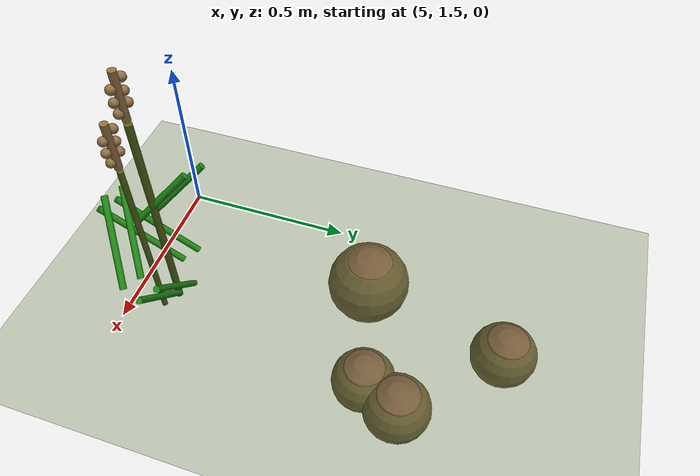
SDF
<sdf version="1.6">
 <world name="default">
  <model name="ground">
   <static>true</static>
   <link name="link">
    <collision name="col"><geometry><plane><normal>0 0 1</normal><size>40 40</size></plane></geometry></collision>
    <visual name="vis">
     <geometry><plane><normal>0 0 1</normal><size>40 40</size></plane></geometry>
     <material><ambient>0.30 0.40 0.15 1</ambient><diffuse>0.30 0.40 0.15 1</diffuse></material>
    </visual>
   </link>
  </model>
  <model name="plant_27">
   <static>true</static>
   <pose>5.38 1.62 0 0 0 0</pose>
   <link name="link">
    <visual name="stem_0">
     <pose>0.000 0.000 0.320 0.000 0.000 0.000</pose>
     <geometry><cylinder><radius>0.01</radius><length>0.64</length></cylinder></geometry>
     <material><ambient>0.30 0.38 0.08 1</ambient><diffuse>0.30 0.38 0.08 1</diffuse></material>
    </visual>
    <visual name="leaf_0_0">
     <pose>0.055 0.045 0.130 0.000 0.700 0.150</pose>
     <geometry><cylinder><radius>0.009</radius><length>0.3</length></cylinder></geometry>
     <material><ambient>0.12 0.55 0.08 1</ambient><diffuse>0.12 0.55 0.08 1</diffuse></material>
    </visual>
    <visual name="leaf_0_1">
     <pose>-0.055 -0.045 0.230 0.000 -0.720 1.900</pose>
     <geometry><cylinder><radius>0.009</radius><length>0.28</length></cylinder></geometry>
     <material><ambient>0.12 0.55 0.08 1</ambient><diffuse>0.12 0.55 0.08 1</diffuse></material>
    </visual>
    <visual name="leaf_0_2">
     <pose>0.055 -0.045 0.320 0.000 0.780 3.700</pose>
     <geometry><cylinder><radius>0.009</radius><length>0.24</length></cylinder></geometry>
     <material><ambient>0.12 0.55 0.08 1</ambient><diffuse>0.12 0.55 0.08 1</diffuse></material>
    </visual>
    <visual name="leaf_0_3">
     <pose>-0.055 0.045 0.400 0.000 -0.800 5.200</pose>
     <geometry><cylinder><radius>0.009</radius><length>0.2</length></cylinder></geometry>
     <material><ambient>0.12 0.55 0.08 1</ambient><diffuse>0.12 0.55 0.08 1</diffuse></material>
    </visual>
    <visual name="stem_1">
     <pose>0.045 -0.025 0.265 0.000 0.000 0.000</pose>
     <geometry><cylinder><radius>0.008</radius><length>0.53</length></cylinder></geometry>
     <material><ambient>0.30 0.38 0.08 1</ambient><diffuse>0.30 0.38 0.08 1</diffuse></material>
    </visual>
    <visual name="leaf_1_0">
     <pose>0.100 0.020 0.130 0.000 0.700 0.150</pose>
     <geometry><cylinder><radius>0.009</radius><length>0.3</length></cylinder></geometry>
     <material><ambient>0.12 0.55 0.08 1</ambient><diffuse>0.12 0.55 0.08 1</diffuse></material>
    </visual>
    <visual name="leaf_1_1">
     <pose>-0.010 -0.070 0.230 0.000 -0.720 1.900</pose>
     <geometry><cylinder><radius>0.009</radius><length>0.28</length></cylinder></geometry>
     <material><ambient>0.12 0.55 0.08 1</ambient><diffuse>0.12 0.55 0.08 1</diffuse></material>
    </visual>
    <visual name="leaf_1_2">
     <pose>0.100 -0.070 0.320 0.000 0.780 3.700</pose>
     <geometry><cylinder><radius>0.009</radius><length>0.24</length></cylinder></geometry>
     <material><ambient>0.12 0.55 0.08 1</ambient><diffuse>0.12 0.55 0.08 1</diffuse></material>
    </visual>
    <visual name="leaf_1_3">
     <pose>-0.010 0.020 0.400 0.000 -0.800 5.200</pose>
     <geometry><cylinder><radius>0.009</radius><length>0.2</length></cylinder></geometry>
     <material><ambient>0.12 0.55 0.08 1</ambient><diffuse>0.12 0.55 0.08 1</diffuse></material>
    </visual>
    <visual name="ear_axis_0">
     <pose>0.000 0.000 0.715 0.000 0.000 0.000</pose>
     <geometry><cylinder><radius>0.010</radius><length>0.13</length></cylinder></geometry>
     <material><ambient>0.56 0.43 0.26 1</ambient><diffuse>0.56 0.43 0.26 1</diffuse></material>
    </visual>
    <visual name="grain_0_0">
     <pose>0.012 -0.006 0.675 0.000 0.000 0.000</pose>
     <geometry><sphere><radius>0.012</radius></sphere></geometry>
     <material><ambient>0.56 0.43 0.26 1</ambient><diffuse>0.56 0.43 0.26 1</diffuse></material>
    </visual>
    <visual name="grain_0_1">
     <pose>-0.014 0.006 0.691 0.000 0.000 0.000</pose>
     <geometry><sphere><radius>0.012</radius></sphere></geometry>
     <material><ambient>0.56 0.43 0.26 1</ambient><diffuse>0.56 0.43 0.26 1</diffuse></material>
    </visual>
    <visual name="grain_0_2">
     <pose>0.016 -0.006 0.707 0.000 0.000 0.000</pose>
     <geometry><sphere><radius>0.012</radius></sphere></geometry>
     <material><ambient>0.56 0.43 0.26 1</ambient><diffuse>0.56 0.43 0.26 1</diffuse></material>
    </visual>
    <visual name="grain_0_3">
     <pose>-0.012 0.006 0.723 0.000 0.000 0.000</pose>
     <geometry><sphere><radius>0.012</radius></sphere></geometry>
     <material><ambient>0.56 0.43 0.26 1</ambient><diffuse>0.56 0.43 0.26 1</diffuse></material>
    </visual>
    <visual name="grain_0_4">
     <pose>0.014 -0.006 0.739 0.000 0.000 0.000</pose>
     <geometry><sphere><radius>0.012</radius></sphere></geometry>
     <material><ambient>0.56 0.43 0.26 1</ambient><diffuse>0.56 0.43 0.26 1</diffuse></material>
    </visual>
    <visual name="grain_0_5">
     <pose>-0.016 0.006 0.755 0.000 0.000 0.000</pose>
     <geometry><sphere><radius>0.012</radius></sphere></geometry>
     <material><ambient>0.56 0.43 0.26 1</ambient><diffuse>0.56 0.43 0.26 1</diffuse></material>
    </visual>
    <visual name="ear_axis_1">
     <pose>0.045 -0.025 0.605 0.000 0.000 0.000</pose>
     <geometry><cylinder><radius>0.010</radius><length>0.13</length></cylinder></geometry>
     <material><ambient>0.56 0.43 0.26 1</ambient><diffuse>0.56 0.43 0.26 1</diffuse></material>
    </visual>
    <visual name="grain_1_0">
     <pose>0.057 -0.031 0.565 0.000 0.000 0.000</pose>
     <geometry><sphere><radius>0.012</radius></sphere></geometry>
     <material><ambient>0.56 0.43 0.26 1</ambient><diffuse>0.56 0.43 0.26 1</diffuse></material>
    </visual>
    <visual name="grain_1_1">
     <pose>0.031 -0.019 0.581 0.000 0.000 0.000</pose>
     <geometry><sphere><radius>0.012</radius></sphere></geometry>
     <material><ambient>0.56 0.43 0.26 1</ambient><diffuse>0.56 0.43 0.26 1</diffuse></material>
    </visual>
    <visual name="grain_1_2">
     <pose>0.061 -0.031 0.597 0.000 0.000 0.000</pose>
     <geometry><sphere><radius>0.012</radius></sphere></geometry>
     <material><ambient>0.56 0.43 0.26 1</ambient><diffuse>0.56 0.43 0.26 1</diffuse></material>
    </visual>
    <visual name="grain_1_3">
     <pose>0.033 -0.019 0.613 0.000 0.000 0.000</pose>
     <geometry><sphere><radius>0.012</radius></sphere></geometry>
     <material><ambient>0.56 0.43 0.26 1</ambient><diffuse>0.56 0.43 0.26 1</diffuse></material>
    </visual>
    <visual name="grain_1_4">
     <pose>0.059 -0.031 0.629 0.000 0.000 0.000</pose>
     <geometry><sphere><radius>0.012</radius></sphere></geometry>
     <material><ambient>0.56 0.43 0.26 1</ambient><diffuse>0.56 0.43 0.26 1</diffuse></material>
    </visual>
    <visual name="grain_1_5">
     <pose>0.029 -0.019 0.645 0.000 0.000 0.000</pose>
     <geometry><sphere><radius>0.012</radius></sphere></geometry>
     <material><ambient>0.56 0.43 0.26 1</ambient><diffuse>0.56 0.43 0.26 1</diffuse></material>
    </visual>
   </link>
  </model>
  <model name="bump_2_02">
   <static>true</static>
   <pose>5.23 2.57 -0.076 0 0 0</pose>
   <link name="link">
    <collision name="c"><geometry><sphere><radius>0.096</radius></sphere></geometry></collision>
    <visual name="v">
     <geometry><sphere><radius>0.096</radius></sphere></geometry>
     <material><ambient>0.45 0.35 0.22 1</ambient><diffuse>0.45 0.35 0.22 1</diffuse></material>
    </visual>
   </link>
  </model>
  <model name="bump_2_03">
   <static>true</static>
   <pose>5.44 2.21 -0.072 0 0 0</pose>
   <link name="link">
    <collision name="c"><geometry><sphere><radius>0.092</radius></sphere></geometry></collision>
    <visual name="v">
     <geometry><sphere><radius>0.092</radius></sphere></geometry>
     <material><ambient>0.45 0.35 0.22 1</ambient><diffuse>0.45 0.35 0.22 1</diffuse></material>
    </visual>
   </link>
  </model>
  <model name="bump_2_10">
   <static>true</static>
   <pose>5.08 2.12 -0.110 0 0 0</pose>
   <link name="link">
    <collision name="c"><geometry><sphere><radius>0.130</radius></sphere></geometry></collision>
    <visual name="v">
     <geometry><sphere><radius>0.130</radius></sphere></geometry>
     <material><ambient>0.45 0.35 0.22 1</ambient><diffuse>0.45 0.35 0.22 1</diffuse></material>
    </visual>
   </link>
  </model>
  <model name="bump_2_25">
   <static>true</static>
   <pose>5.49 2.32 -0.077 0 0 0</pose>
   <link name="link">
    <collision name="c"><geometry><sphere><radius>0.097</radius></sphere></geometry></collision>
    <visual name="v">
     <geometry><sphere><radius>0.097</radius></sphere></geometry>
     <material><ambient>0.45 0.35 0.22 1</ambient><diffuse>0.45 0.35 0.22 1</diffuse></material>
    </visual>
   </link>
  </model>
 </world>
</sdf>
